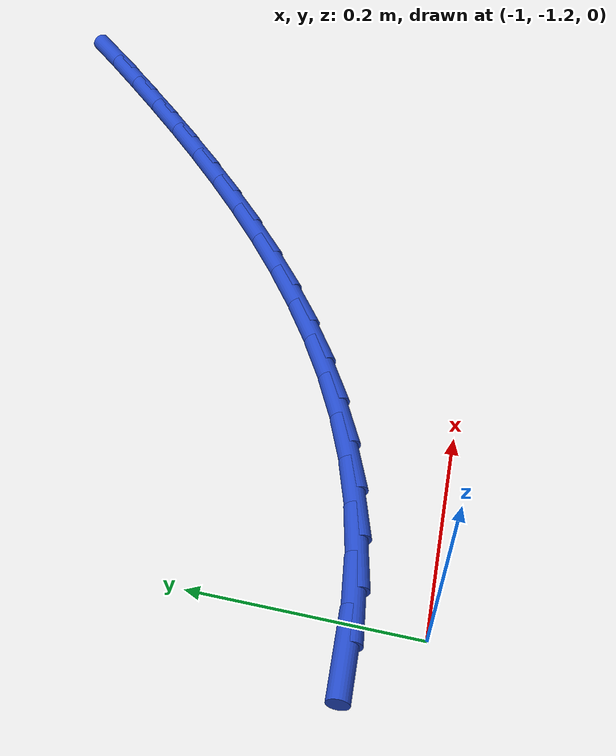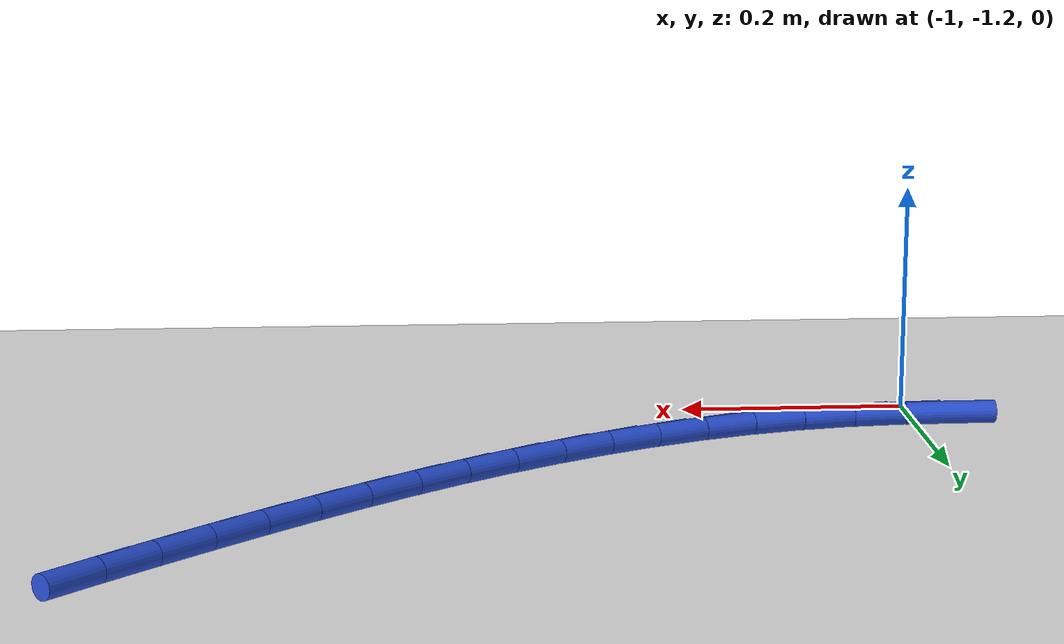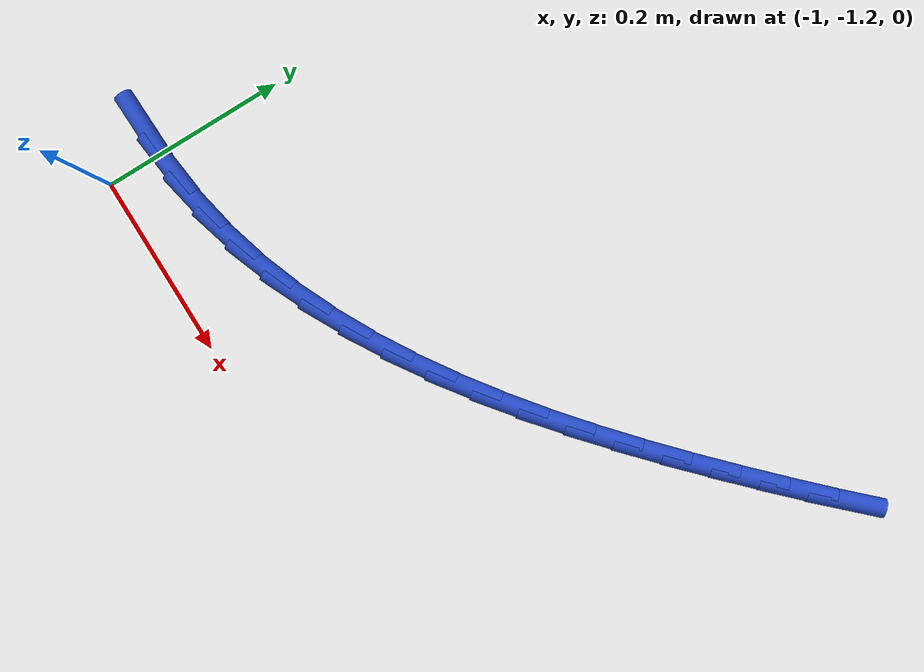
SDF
<sdf version="1.6">
 <world name="default">
  <model name="ground_plane">
   <static>1</static>
   <link name="link">
    <collision name="collision">
     <geometry><plane><normal>0 0 1</normal><size>100 100</size></plane></geometry>
     <surface><friction><ode><mu>100</mu><mu2>50</mu2></ode></friction></surface>
    </collision>
    <visual name="visual">
     <cast_shadows>0</cast_shadows>
     <geometry><plane><normal>0 0 1</normal><size>100 100</size></plane></geometry>
     <material>
      <script><uri>file://media/materials/scripts/gazebo.material</uri><name>Gazebo/WhiteGlow</name></script>
     </material>
    </visual>
   </link>
  </model>
  <model name="line">
   <link name="link_106">
    <pose>-1.0306675729635673 -1.1385176691381056 0.01 0 1.57 0.0262318515326128</pose>
    <collision name="collision">
     <geometry><cylinder><radius>0.01</radius><length>0.08</length></cylinder></geometry>
    </collision>
    <visual name="visual">
     <material>
      <script><name>Gazebo/Blue</name><uri>file://media/materials/scripts/gazebo.material</uri></script>
     </material>
     <geometry><cylinder><radius>0.01</radius><length>0.08</length></cylinder></geometry>
    </visual>
   </link>
   <link name="link_107">
    <pose>-0.9829539911347567 -1.1372657663813597 0.01 0 1.57 0.1087213182173005</pose>
    <collision name="collision">
     <geometry><cylinder><radius>0.01</radius><length>0.08</length></cylinder></geometry>
    </collision>
    <visual name="visual">
     <material>
      <script><name>Gazebo/Blue</name><uri>file://media/materials/scripts/gazebo.material</uri></script>
     </material>
     <geometry><cylinder><radius>0.01</radius><length>0.08</length></cylinder></geometry>
    </visual>
   </link>
   <link name="link_108">
    <pose>-0.9359309147166178 -1.1321331163751465 0.01 0 1.57 0.19549393749243196</pose>
    <collision name="collision">
     <geometry><cylinder><radius>0.01</radius><length>0.08</length></cylinder></geometry>
    </collision>
    <visual name="visual">
     <material>
      <script><name>Gazebo/Blue</name><uri>file://media/materials/scripts/gazebo.material</uri></script>
     </material>
     <geometry><cylinder><radius>0.01</radius><length>0.08</length></cylinder></geometry>
    </visual>
   </link>
   <link name="link_109">
    <pose>-0.8897505726713586 -1.1229883436279113 0.01 0 1.57 0.2775598739028718</pose>
    <collision name="collision">
     <geometry><cylinder><radius>0.01</radius><length>0.08</length></cylinder></geometry>
    </collision>
    <visual name="visual">
     <material>
      <script><name>Gazebo/Blue</name><uri>file://media/materials/scripts/gazebo.material</uri></script>
     </material>
     <geometry><cylinder><radius>0.01</radius><length>0.08</length></cylinder></geometry>
    </visual>
   </link>
   <link name="link_110">
    <pose>-0.8444216460617842 -1.1100734851877894 0.01 0 1.57 0.35298451580189705</pose>
    <collision name="collision">
     <geometry><cylinder><radius>0.01</radius><length>0.08</length></cylinder></geometry>
    </collision>
    <visual name="visual">
     <material>
      <script><name>Gazebo/Blue</name><uri>file://media/materials/scripts/gazebo.material</uri></script>
     </material>
     <geometry><cylinder><radius>0.01</radius><length>0.08</length></cylinder></geometry>
    </visual>
   </link>
   <link name="link_111">
    <pose>-0.7999326287381991 -1.0936830912941238 0.01 0 1.57 0.421407375718957</pose>
    <collision name="collision">
     <geometry><cylinder><radius>0.01</radius><length>0.08</length></cylinder></geometry>
    </collision>
    <visual name="visual">
     <material>
      <script><name>Gazebo/Blue</name><uri>file://media/materials/scripts/gazebo.material</uri></script>
     </material>
     <geometry><cylinder><radius>0.01</radius><length>0.08</length></cylinder></geometry>
    </visual>
   </link>
   <link name="link_112">
    <pose>-0.7562720145509088 -1.074111712186257 0.01 0 1.57 0.48280385996978425</pose>
    <collision name="collision">
     <geometry><cylinder><radius>0.01</radius><length>0.08</length></cylinder></geometry>
    </collision>
    <visual name="visual">
     <material>
      <script><name>Gazebo/Blue</name><uri>file://media/materials/scripts/gazebo.material</uri></script>
     </material>
     <geometry><cylinder><radius>0.01</radius><length>0.08</length></cylinder></geometry>
    </visual>
   </link>
   <link name="link_113">
    <pose>-0.713428297350217 -1.0516538981035304 0.01 0 1.57 0.537382841809601</pose>
    <collision name="collision">
     <geometry><cylinder><radius>0.01</radius><length>0.08</length></cylinder></geometry>
    </collision>
    <visual name="visual">
     <material>
      <script><name>Gazebo/Blue</name><uri>file://media/materials/scripts/gazebo.material</uri></script>
     </material>
     <geometry><cylinder><radius>0.01</radius><length>0.08</length></cylinder></geometry>
    </visual>
   </link>
   <link name="link_114">
    <pose>-0.6713899709864305 -1.0266041992852881 0.01 0 1.57 0.5854929974513385</pose>
    <collision name="collision">
     <geometry><cylinder><radius>0.01</radius><length>0.08</length></cylinder></geometry>
    </collision>
    <visual name="visual">
     <material>
      <script><name>Gazebo/Blue</name><uri>file://media/materials/scripts/gazebo.material</uri></script>
     </material>
     <geometry><cylinder><radius>0.01</radius><length>0.08</length></cylinder></geometry>
    </visual>
   </link>
   <link name="link_115">
    <pose>-0.6301455293098533 -0.999257165970872 0.01 0 1.57 0.6275482575768158</pose>
    <collision name="collision">
     <geometry><cylinder><radius>0.01</radius><length>0.08</length></cylinder></geometry>
    </collision>
    <visual name="visual">
     <material>
      <script><name>Gazebo/Blue</name><uri>file://media/materials/scripts/gazebo.material</uri></script>
     </material>
     <geometry><cylinder><radius>0.01</radius><length>0.08</length></cylinder></geometry>
    </visual>
   </link>
   <link name="link_116">
    <pose>-0.5896834661707908 -0.9699073483996247 0.01 0 1.57 0.6639739813423248</pose>
    <collision name="collision">
     <geometry><cylinder><radius>0.01</radius><length>0.08</length></cylinder></geometry>
    </collision>
    <visual name="visual">
     <material>
      <script><name>Gazebo/Blue</name><uri>file://media/materials/scripts/gazebo.material</uri></script>
     </material>
     <geometry><cylinder><radius>0.01</radius><length>0.08</length></cylinder></geometry>
    </visual>
   </link>
   <link name="link_117">
    <pose>-0.5499922754195471 -0.9388492968108877 0.01 0 1.57 0.6951708807874665</pose>
    <collision name="collision">
     <geometry><cylinder><radius>0.01</radius><length>0.08</length></cylinder></geometry>
    </collision>
    <visual name="visual">
     <material>
      <script><name>Gazebo/Blue</name><uri>file://media/materials/scripts/gazebo.material</uri></script>
     </material>
     <geometry><cylinder><radius>0.01</radius><length>0.08</length></cylinder></geometry>
    </visual>
   </link>
   <link name="link_118">
    <pose>-0.5110604509064287 -0.9063775614440055 0.01 0 1.57 0.7214921825918141</pose>
    <collision name="collision">
     <geometry><cylinder><radius>0.01</radius><length>0.08</length></cylinder></geometry>
    </collision>
    <visual name="visual">
     <material>
      <script><name>Gazebo/Blue</name><uri>file://media/materials/scripts/gazebo.material</uri></script>
     </material>
     <geometry><cylinder><radius>0.01</radius><length>0.08</length></cylinder></geometry>
    </visual>
   </link>
   <link name="link_119">
    <pose>-0.47287648648173963 -0.8727866925383194 0.01 0 1.57 0.7432296180157397</pose>
    <collision name="collision">
     <geometry><cylinder><radius>0.01</radius><length>0.08</length></cylinder></geometry>
    </collision>
    <visual name="visual">
     <material>
      <script><name>Gazebo/Blue</name><uri>file://media/materials/scripts/gazebo.material</uri></script>
     </material>
     <geometry><cylinder><radius>0.01</radius><length>0.08</length></cylinder></geometry>
    </visual>
   </link>
   <link name="link_120">
    <pose>-0.43542887599578517 -0.8383712403331722 0.01 0 1.57 0.7606045722329761</pose>
    <collision name="collision">
     <geometry><cylinder><radius>0.01</radius><length>0.08</length></cylinder></geometry>
    </collision>
    <visual name="visual">
     <material>
      <script><name>Gazebo/Blue</name><uri>file://media/materials/scripts/gazebo.material</uri></script>
     </material>
     <geometry><cylinder><radius>0.01</radius><length>0.08</length></cylinder></geometry>
    </visual>
   </link>
   <link name="link_121">
    <pose>-0.39870611329887035 -0.8034257550679067 0.01 0 1.57 0.7738499170220088</pose>
    <collision name="collision">
     <geometry><cylinder><radius>0.01</radius><length>0.08</length></cylinder></geometry>
    </collision>
    <visual name="visual">
     <material>
      <script><name>Gazebo/Blue</name><uri>file://media/materials/scripts/gazebo.material</uri></script>
     </material>
     <geometry><cylinder><radius>0.01</radius><length>0.08</length></cylinder></geometry>
    </visual>
   </link>
   <link name="link_122">
    <pose>-0.36269850164913825 -0.7682403346428015 0.01 0 1.57 0.786787861958652</pose>
    <collision name="collision">
     <geometry><cylinder><radius>0.01</radius><length>0.08</length></cylinder></geometry>
    </collision>
    <visual name="visual">
     <material>
      <script><name>Gazebo/Blue</name><uri>file://media/materials/scripts/gazebo.material</uri></script>
     </material>
     <geometry><cylinder><radius>0.01</radius><length>0.08</length></cylinder></geometry>
    </visual>
   </link>
   <link name="link_123">
    <pose>-0.32747290248569494 -0.7329166932381316 0.01 0 1.57 0.804577808397292</pose>
    <collision name="collision">
     <geometry><cylinder><radius>0.01</radius><length>0.08</length></cylinder></geometry>
    </collision>
    <visual name="visual">
     <material>
      <script><name>Gazebo/Blue</name><uri>file://media/materials/scripts/gazebo.material</uri></script>
     </material>
     <geometry><cylinder><radius>0.01</radius><length>0.08</length></cylinder></geometry>
    </visual>
   </link>
  </model>
 </world>
</sdf>
